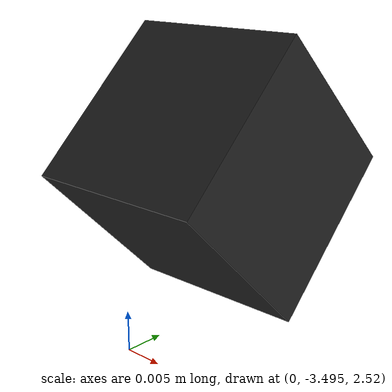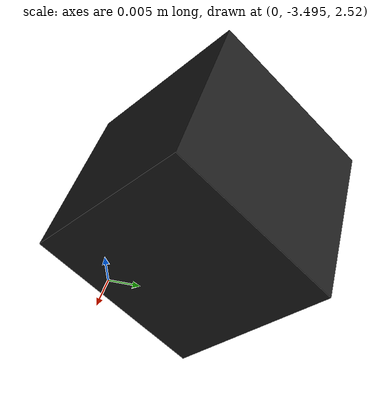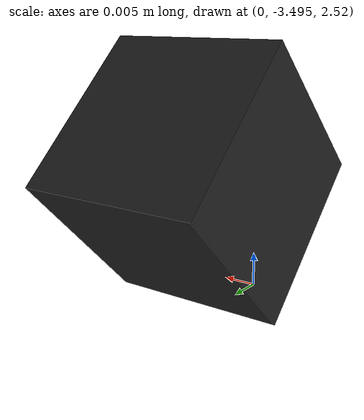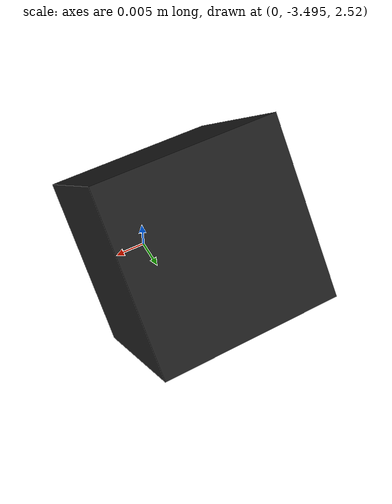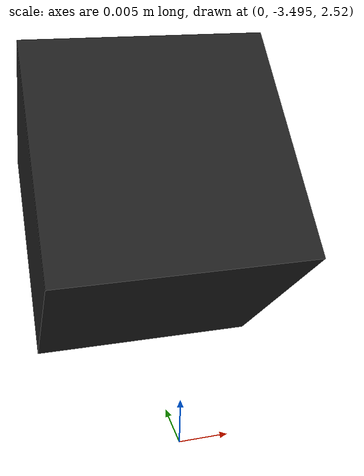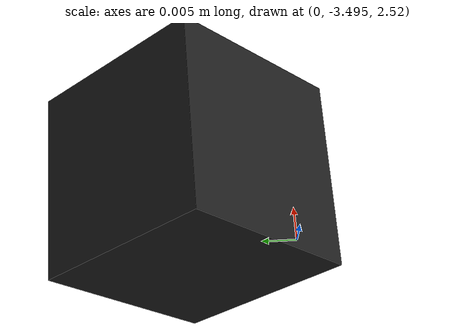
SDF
<?xml version='1.0'?>
<sdf version='1.4'>
	<model name="rayquaza">
		<static>true</static>
		<link name='link'>

			<visual name='visual'>
				<pose>0.0 -3.4798 2.54 0.0 0.785398 1.5708</pose>
				<geometry>
					<box>
						<size>0.025 0.025 0.025</size>
					</box>
				</geometry>
				<material>
					<script>
						<name>Gazebo/FlatBlack</name>
					</script>
				</material>
			</visual>

			<sensor type="camera" name="camera">

				<pose>0.0 -3.4798 2.54 0.0 0.785398 1.5708</pose>

				<visualize>true</visualize>
				<update_rate>6.0</update_rate>

				<camera name="april_tag_motion_tracking">
					<horizontal_fov>1.22173</horizontal_fov>
					<image>
						<width>1920</width>
						<height>1080</height>
						<format>B8G8R8</format>
					</image>
					<clip>
						<near>0.02</near>
						<far>300</far>
					</clip>
					<noise>
						<type>gaussian</type>
						<mean>0.0</mean>
						<stddev>0.007</stddev>
					</noise>
				</camera>

				<plugin name="camera_controller" filename="libgazebo_ros_camera.so">
					<alwaysOn>true</alwaysOn>
					<updateRate>0.0</updateRate>
					<cameraName>/rayquaza/camera</cameraName>
					<imageTopicName>/rayquaza/camera/image</imageTopicName>
					<cameraInfoTopicName>/rayquaza/camera/info</cameraInfoTopicName>
					<frameName>camera_link</frameName>
					<hackBaseline>0.1</hackBaseline>
					<distortionK1>0.0</distortionK1>
					<distortionK2>0.0</distortionK2>
					<distortionK3>0.0</distortionK3>
					<distortionT1>0.0</distortionT1>
					<distortionT2>0.0</distortionT2>
					<CxPrime>0.0</CxPrime>
					<Cx>0.0</Cx>
					<Cy>0.0</Cy>
					<focalLength>0.0</focalLength>
				</plugin>

			</sensor>
		</link>
	</model>
</sdf>
